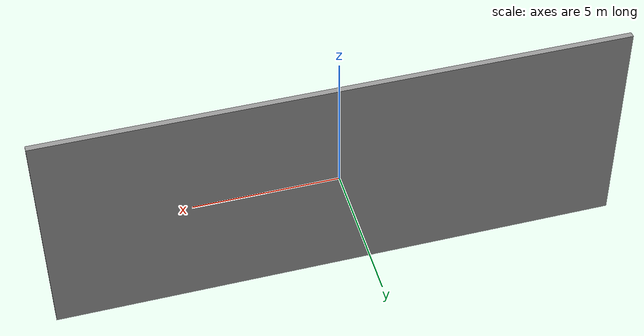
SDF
<?xml version="1.0" ?>
<sdf version="1.5">
  <model name="Armada_Wall1">
    <static>true</static>
    <link name="link">
      <pose>0 0 0 0 0 0</pose>
      <collision name="collision">
        <geometry>
          <box>
            <size>20 0.2 8</size>
          </box>
        </geometry>
      </collision>
      <visual name="visual">
        <cast_shadows>false</cast_shadows>
        <geometry>
          <box>
            <size>20 0.2 8</size>
          </box>
        </geometry>
        <material>
          <script>
            <uri>model://Armada_Wall1/materials/scripts</uri>
            <uri>model://Armada_Wall1/materials/textures</uri>
            <name>vrc/grey_wall</name>
          </script>
        </material>
      </visual>
    </link>
  </model>
</sdf>
